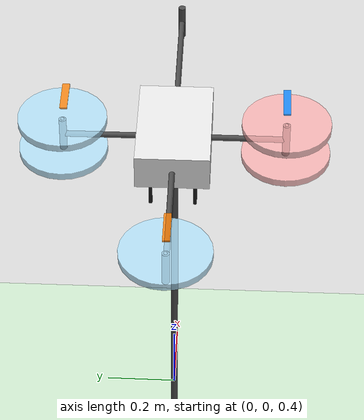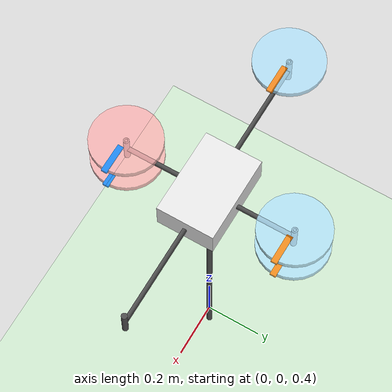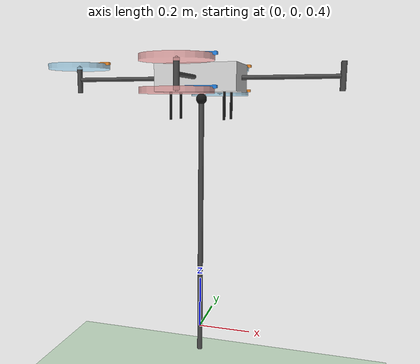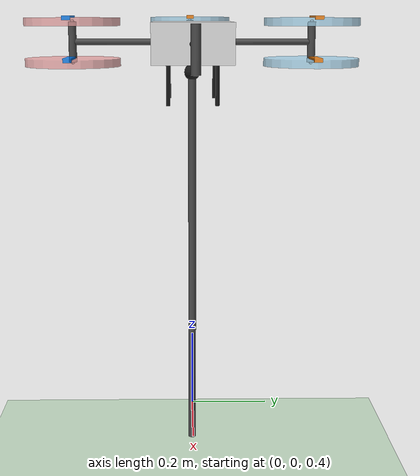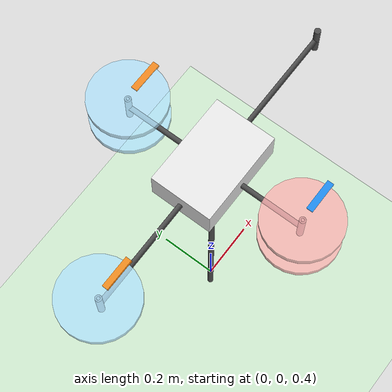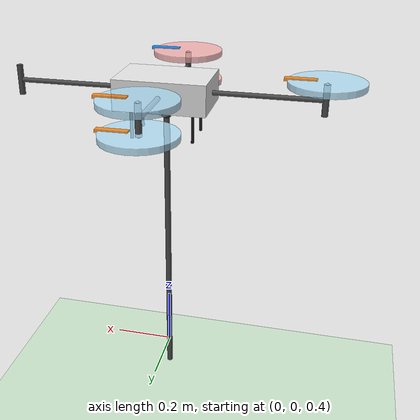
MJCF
<?xml version="1.0" encoding="utf-8"?>
<!-- 201基础上增加了固定杆 -->
<mujoco>
  <compiler angle="radian" inertiafromgeom="false"/>
  <option timestep="0.001" iterations="100" tolerance="1e-10" integrator="RK4"/>

  <!-- 全局默认参数 -->
  <default>
    <geom contype="1" conaffinity="1" solimp="0.9 0.95 0.001" solref="0.02 1"/>
    <joint limited="true" damping="0.1" armature="0.1"/>
  </default>

  <default>
    <!-- 定义碰撞类别 -->
    <default class="drone">
    </default>
      <!-- 视觉几何体默认参数：不参与碰撞 -->
    <!-- 机体类别：contype=2, conaffinity=1，只与环境（contype=1）碰撞 -->

    <default class="body">
      <geom contype="2" conaffinity="1"/>
    </default>
    <!-- 螺旋桨类别：contype=4, conaffinity=1，只与环境（contype=1）碰撞 -->
    <default class="propeller">
      <geom contype="4" conaffinity="1"/>
    </default>
  </default>

  <asset>
    <material name="white" rgba="0.9 0.9 0.9 1"/>
    <material name="orange" rgba="1.0 0.5 0.0 1"/>
    <material name="blue" rgba="0.0 0.5 1.0 1"/>
    <material name="dark_gray" rgba="0.3 0.3 0.3 1"/>
    <material name="cyan" rgba="0.0 1.0 1.0 1"/>
    <material name="black" rgba="0.1 0.1 0.1 1"/>
    <material name="propeller_color1" rgba="0.7 0.9 1.0 0.8"/>
    <material name="propeller_color2" rgba="1.0 0.7 0.7 0.8"/>
  </asset>

  <worldbody>
    <!-- 地面：使用全局默认（contype=1, conaffinity=1），与所有部件碰撞 -->
    <geom name="ground" type="plane" size="10 10 0.1" pos="0 0 0" rgba="0.8 0.9 0.8 1"/>

    <!-- 调试架立柱 -->
    <body name="test_stand_pole" pos="0 0 0.3">
      <geom name="stand_pole" type="cylinder" size="0.01 0.5" pos="0 0 0.5" material="dark_gray"/>
      <inertial pos="0 0 0.5" mass="2.0" diaginertia="0.05 0.05 0.05"/>

      <!-- 调试架万向节连接点 -->
      <body name="gimbal_connection" pos="0 0 1.0">
        <geom name="gimbal_base_geom" type="sphere" size="0.02" material="black"/>

        <!-- 无人机主体 - 现在通过万向节连接在调试架上 -->
        <body name="drone" pos="0 0 0.075">
          <!-- 将freejoint改为ball关节，只保留旋转自由度 -->
          <joint name="drone_gimbal" type="ball" pos="0 0 -0.075" damping="0.0" armature="0.0"/>

          <!-- 无人机机身（立方体） -->
          <geom name="body" type="box" size="0.15 0.1 0.05" pos="0 0 0" material="white" class="body"/>
          <inertial pos="0 0 0" mass="3.0" diaginertia="0.01 0.01 0.01"/>

          <!-- 机腹四条腿 -->
          <body name="leg_front_right" pos="0.1 0.06 -0.05">
            <geom name="leg_fr" type="cylinder" fromto="0 0 0 0 0 -0.1" size="0.005" material="black" class="body"/>
            <inertial pos="0 0 -0.05" mass="0.001" diaginertia="0.000001 0.000001 0.000001"/>
          </body>
          <body name="leg_front_left" pos="0.1 -0.06 -0.05">
            <geom name="leg_fl" type="cylinder" fromto="0 0 0 0 0 -0.1" size="0.005" material="black" class="body"/>
            <inertial pos="0 0 -0.05" mass="0.001" diaginertia="0.000001 0.000001 0.000001"/>
          </body>
          <body name="leg_rear_right" pos="-0.1 0.06 -0.05">
            <geom name="leg_rr" type="cylinder" fromto="0 0 0 0 0 -0.1" size="0.005" material="black" class="body"/>
            <inertial pos="0 0 -0.05" mass="0.001" diaginertia="0.000001 0.000001 0.000001"/>
          </body>
          <body name="leg_rear_left" pos="-0.1 -0.06 -0.05">
            <geom name="leg_rl" type="cylinder" fromto="0 0 0 0 0 -0.1" size="0.005" material="black" class="body"/>
            <inertial pos="0 0 -0.05" mass="0.001" diaginertia="0.000001 0.000001 0.000001"/>
          </body>

          <!-- 左机臂和螺旋桨（顺时针旋转 - 橙色） -->
          <body name="right_arm_base" pos="0 0.1 0">
            <!-- 机臂绕自身中心轴旋转关节（Yaw轴） -->
            <joint name="arm_pitch_left" type="hinge" pos="0 0 0" axis="0 1 0" limited="true" range="-3.1 3.1"/>

            <!-- 机臂与机身连接的圆柱体 -->
            <geom name="arm_connector_r" type="cylinder" fromto="0 0 0 0 0.2 0" size="0.008" material="dark_gray" class="body"/>
            <inertial pos="0 0.1 0" mass="0.3" diaginertia="0.002 0.002 0.002"/>

            <!-- 螺旋桨支撑柱（可倾转） -->
            <body name="right_prop_support" pos="0 0.2 0">
              <!-- 共轴双桨模块倾转关节（Roll轴） -->
              <joint name="prop_tilt_left" type="hinge" pos="0 0 0" axis="1 0 0" limited="true" range="-3.1 3.1"/>

              <geom name="prop_support_r" type="cylinder" fromto="0 0 -0.05 0 0 0.05" size="0.01" material="dark_gray" class="body"/>
              <inertial pos="0 0 0" mass="0.1" diaginertia="0.001 0.001 0.001"/>

              <!-- 上螺旋桨 -->
              <body name="right_prop_upper" pos="0 0 0.05">
                <joint name="prop_r_upper" type="hinge" pos="0 0 0" axis="0 0 1" limited="false"/>
                <geom name="propeller_r_upper" type="cylinder" size="0.12 0.01" euler="0 0 0" material="propeller_color1" class="propeller"/>
                <!-- 旋转方向指示器（橙色） -->
                <site name="rotation_indicator_r_upper" type="box" size="0.05 0.01 0.005" pos="0.08 0 0.01" rgba="1.0 0.5 0.0 0.8"/>
                <inertial pos="0 0 0" mass="0.05" diaginertia="0.0005 0.0005 0.0005"/>
                <site name="motor_r_upper" pos="0.0 0.0 0.0" zaxis="0 0 1"/>
              </body>

              <!-- 下螺旋桨 -->
              <body name="right_prop_lower" pos="0 0 -0.05">
                <joint name="prop_r_lower" type="hinge" pos="0 0 0" axis="0 0 1" limited="false"/>
                <geom name="propeller_r_lower" type="cylinder" size="0.12 0.01" euler="0 0 0" material="propeller_color1" class="propeller"/>
                <!-- 旋转方向指示器（橙色） -->
                <site name="rotation_indicator_r_lower" type="box" size="0.05 0.01 0.005" pos="0.08 0 0.01" rgba="1.0 0.5 0.0 0.8"/>
                <inertial pos="0 0 0" mass="0.05" diaginertia="0.0005 0.0005 0.0005"/>
                <site name="motor_r_lower" pos="0.0 0.0 0.0" zaxis="0 0 1"/>
              </body>
            </body>
          </body>

          <!-- 右机臂和螺旋桨（逆时针旋转 - 蓝色） -->
          <body name="left_arm_base" pos="0 -0.1 0">
            <!-- 机臂绕自身中心轴旋转关节（Yaw轴） -->
            <joint name="arm_pitch_right" type="hinge" pos="0 0 0" axis="0 1 0" limited="true" range="-3.1 3.1"/>

            <!-- 机臂与机身连接的圆柱体 -->
            <geom name="arm_connector_l" type="cylinder" fromto="0 0 0 0 -0.2 0" size="0.008" material="dark_gray" class="body"/>
            <inertial pos="0 -0.1 0" mass="0.3" diaginertia="0.002 0.002 0.002"/>

            <!-- 螺旋桨支撑柱（可倾转） -->
            <body name="left_prop_support" pos="0 -0.2 0">
              <!-- 共轴双桨模块倾转关节（Roll轴） -->
              <joint name="prop_tilt_right" type="hinge" pos="0 0 0" axis="1 0 0" limited="true" range="-3.1 3.1"/>

              <geom name="prop_support_l" type="cylinder" fromto="0 0 -0.05 0 0 0.05" size="0.01" material="dark_gray" class="body"/>
              <inertial pos="0 0 0" mass="0.1" diaginertia="0.001 0.001 0.001"/>

              <!-- 上螺旋桨 -->
              <body name="left_prop_upper" pos="0 0 0.05">
                <joint name="prop_l_upper" type="hinge" pos="0 0 0" axis="0 0 1" limited="false"/>
                <geom name="propeller_l_upper" type="cylinder" size="0.12 0.01" euler="0 0 0" material="propeller_color2" class="propeller"/>
                <!-- 旋转方向指示器（蓝色） -->
                <site name="rotation_indicator_l_upper" type="box" size="0.05 0.01 0.005" pos="0.08 0 0.01" rgba="0.0 0.5 1.0 0.8"/>
                <inertial pos="0 0 0" mass="0.05" diaginertia="0.0005 0.0005 0.0005"/>
                <site name="motor_l_upper" pos="0.0 0.0 0.0" zaxis="0 0 1"/>
              </body>

              <!-- 下螺旋桨 -->
              <body name="left_prop_lower" pos="0 0 -0.05">
                <joint name="prop_l_lower" type="hinge" pos="0 0 0" axis="0 0 1" limited="false"/>
                <geom name="propeller_l_lower" type="cylinder" size="0.12 0.01" euler="0 0 0" material="propeller_color2" class="propeller"/>
                <!-- 旋转方向指示器（蓝色） -->
                <site name="rotation_indicator_l_lower" type="box" size="0.05 0.01 0.005" pos="0.08 0 0.01" rgba="0.0 0.5 1.0 0.8"/>
                <inertial pos="0 0 0" mass="0.05" diaginertia="0.0005 0.0005 0.0005"/>
                <site name="motor_l_lower" pos="0.0 0.0 0.0" zaxis="0 0 1"/>
              </body>
            </body>
          </body>

          <!-- 前向结构 -->
          <body name="forward" pos="0.5 0 0">
            <geom name="forward_geo" type="cylinder" fromto="0 0 0 -0.4 0 0" size="0.008" material="dark_gray" class="body"/>
            <inertial pos="0 0 0" mass="0.01" diaginertia="0.002 0.002 0.002"/>
            <body name="support" pos="0.0 0 0">
              <geom name="support_geo" type="cylinder" fromto="0 0 -0.05 0 0 0.05" size="0.01" material="dark_gray" class="body"/>
              <inertial pos="0 0 0.05" mass="0.1" diaginertia="0.0005 0.0005 0.0005"/>
            </body>
          </body>

          <!-- 后机臂和螺旋桨（顺时针旋转 - 橙色） -->
          <body name="rear_arm_base" pos="-0.1 0 0">
            <geom name="arm_connector_rear" type="cylinder" fromto="0 0 0 -0.4 0 0" size="0.008" material="dark_gray" class="body"/>
            <inertial pos="-0.2 0 0" mass="0.01" diaginertia="0.002 0.002 0.002"/>

            <!-- 螺旋桨支撑柱（可倾转） -->
            <body name="rear_prop_support" pos="-0.4 0 0">
              <geom name="prop_support_rear" type="cylinder" fromto="0 0 -0.05 0 0 0.05" size="0.01" material="dark_gray" class="body"/>
              <inertial pos="0 0 0" mass="0.05" diaginertia="0.001 0.001 0.001"/>

              <!-- 上螺旋桨 -->
              <body name="rear_prop_upper" pos="0 0 0.05">
                <joint name="prop_rear_upper" type="hinge" pos="0 0 0" axis="0 0 1" limited="false"/>
                <geom name="propeller_rear_upper" type="cylinder" size="0.12 0.01" euler="0 0 0" material="propeller_color1" class="propeller"/>
                <!-- 旋转方向指示器（橙色） -->
                <site name="rotation_indicator_rear_upper" type="box" size="0.05 0.01 0.005" pos="0.08 0 0.01" rgba="1.0 0.5 0.0 0.8"/>
                <inertial pos="0 0 0" mass="0.1" diaginertia="0.0005 0.0005 0.0005"/>
                <site name="motor_rear_upper" pos="0.0 0.0 0.0" zaxis="0 0 1"/>
              </body>
            </body>
          </body>
        </body>
      </body>
    </body>

    <light name="light" pos="0 0 5" dir="0 0 -1" directional="true" castshadow="true"/>
  </worldbody>

  <!-- 执行器定义 -->
  <actuator>
    <!-- 螺旋桨转速控制 -->
    <motor name="motor_r_upper" site="motor_r_upper" gear="0 0 1 0 0 0.006" forcerange="0 25" ctrlrange="0 25"/>
    <motor name="motor_r_lower" site="motor_r_lower" gear="0 0 1 0 0 0.006" forcerange="0 25" ctrlrange="0 25"/>
    <motor name="motor_l_upper" site="motor_l_upper" gear="0 0 1 0 0 -0.006" forcerange="0 25" ctrlrange="0 25"/>
    <motor name="motor_l_lower" site="motor_l_lower" gear="0 0 1 0 0 -0.006" forcerange="0 25" ctrlrange="0 25"/>
    <motor name="motor_rear_upper" site="motor_rear_upper" gear="0 0 1 0 0 8.1e-8" forcerange="-10 10" ctrlrange="-10 10"/>

    <!-- 机臂偏航控制（位置伺服） -->
    <position name="tilt_pitch_left" joint="arm_pitch_left" kp="15" kv="3" ctrllimited="true" ctrlrange="-1.57 1.57"/>
    <position name="tilt_pitch_right" joint="arm_pitch_right" kp="15" kv="3" ctrllimited="true" ctrlrange="-1.57 1.57"/>

    <!-- 螺旋桨倾转控制（位置伺服） -->
    <position name="tilt_roll_left" joint="prop_tilt_left" kp="15" kv="3" ctrllimited="true" ctrlrange="-1.57 1.57"/>
    <position name="tilt_roll_right" joint="prop_tilt_right" kp="15" kv="3" ctrllimited="true" ctrlrange="-1.57 1.57"/>

    <!-- 添加无人机姿态控制执行器（用于测试旋转自由度） -->
    <position name="drone_roll" joint="drone_gimbal" kp="10" kv="1" ctrllimited="true" ctrlrange="-0.5 0.5"/>
    <position name="drone_pitch" joint="drone_gimbal" kp="10" kv="1" ctrllimited="true" ctrlrange="-0.5 0.5"/>
    <position name="drone_yaw" joint="drone_gimbal" kp="10" kv="1" ctrllimited="true" ctrlrange="-0.5 0.5"/>
  </actuator>

  <sensor>
    <!-- 位置和姿态传感器 -->
    <framepos name="drone_pos" objtype="body" objname="drone"/>
    <framequat name="drone_quat" objtype="body" objname="drone"/>

    <!-- 螺旋桨速度传感器 -->
    <jointvel name="prop_r_upper_vel" joint="prop_r_upper"/>
    <jointvel name="prop_r_lower_vel" joint="prop_r_lower"/>
    <jointvel name="prop_l_upper_vel" joint="prop_l_upper"/>
    <jointvel name="prop_l_lower_vel" joint="prop_l_lower"/>
    <jointvel name="prop_rear_upper_vel" joint="prop_rear_upper"/>

    <!-- 倾转角度传感器 -->
    <jointpos name="arm_pitch_left_pos" joint="arm_pitch_left"/>
    <jointpos name="arm_pitch_right_pos" joint="arm_pitch_right"/>
    <jointpos name="prop_tilt_left_pos" joint="prop_tilt_left"/>
    <jointpos name="prop_tilt_right_pos" joint="prop_tilt_right"/>

    <!-- 执行器状态传感器 -->
    <actuatorfrc name="motor_r_upper_torque" actuator="motor_r_upper"/>
    <actuatorfrc name="motor_r_lower_torque" actuator="motor_r_lower"/>
    <actuatorfrc name="motor_l_upper_torque" actuator="motor_l_upper"/>
    <actuatorfrc name="motor_l_lower_torque" actuator="motor_l_lower"/>
    <actuatorfrc name="motor_rear_upper_torque" actuator="motor_rear_upper"/>
  </sensor>
</mujoco>
